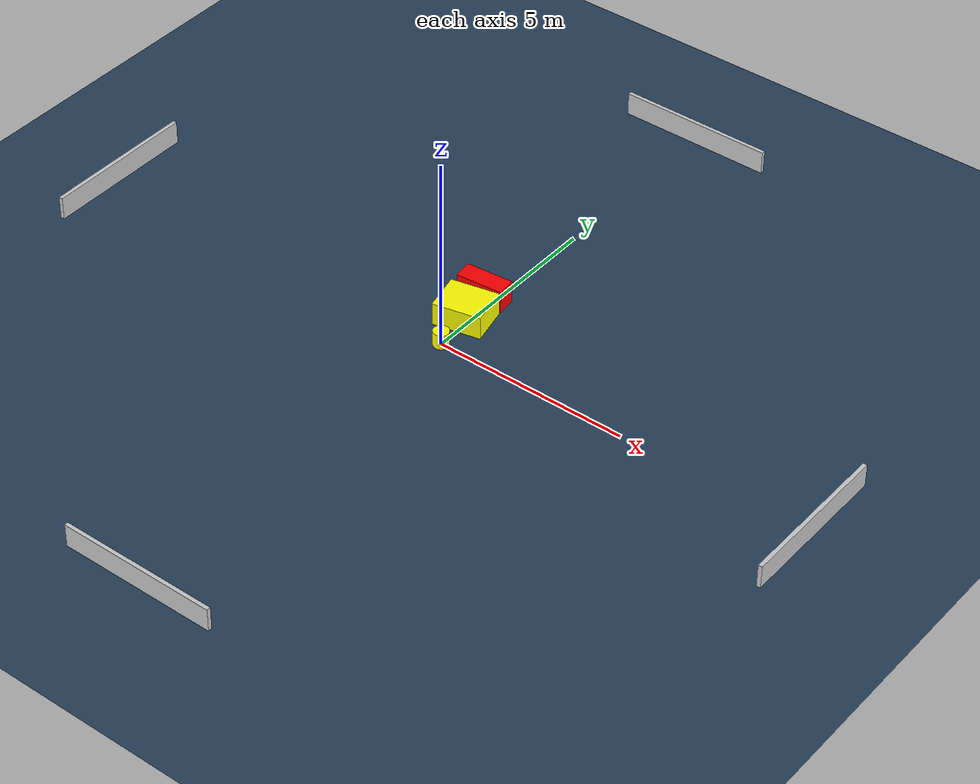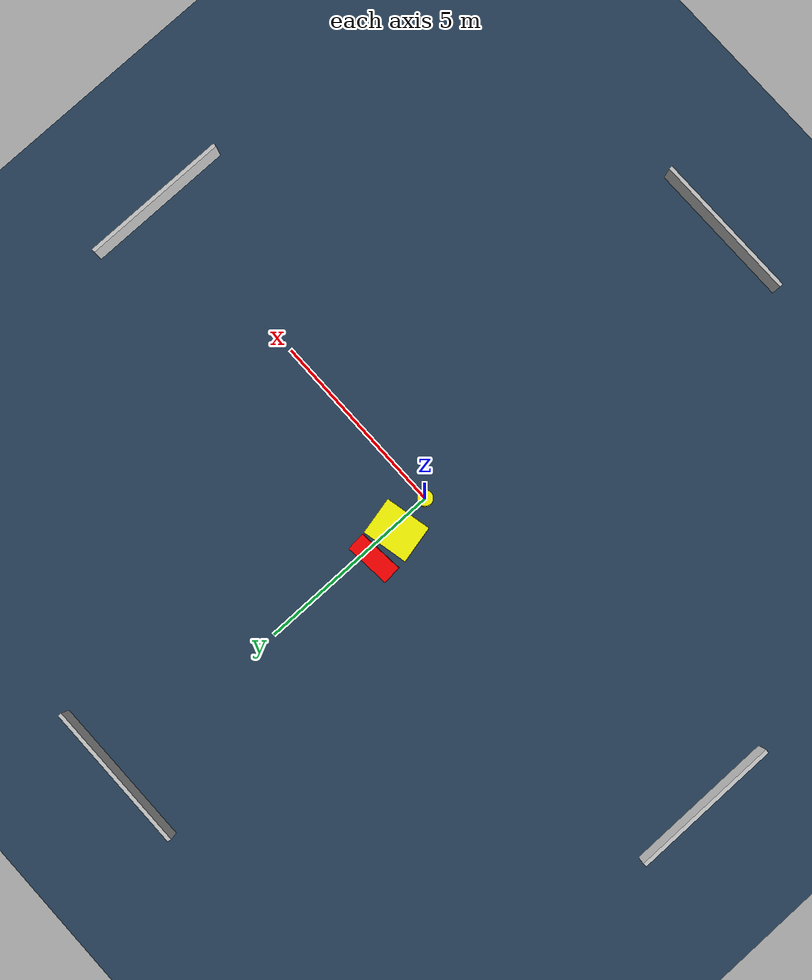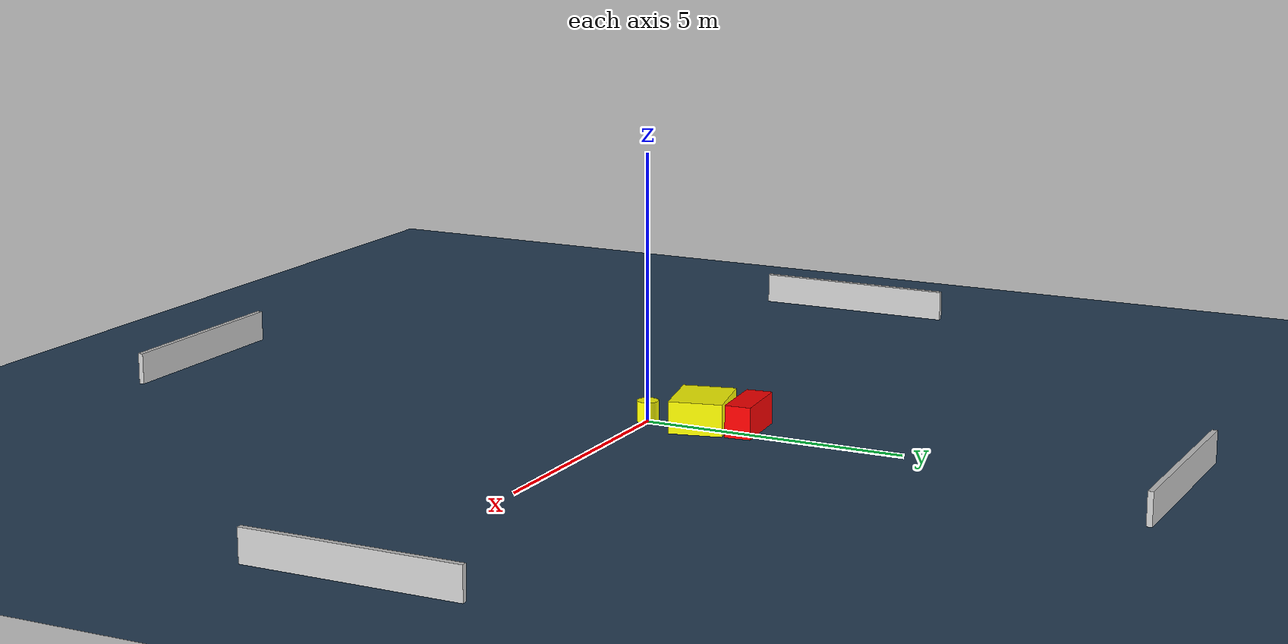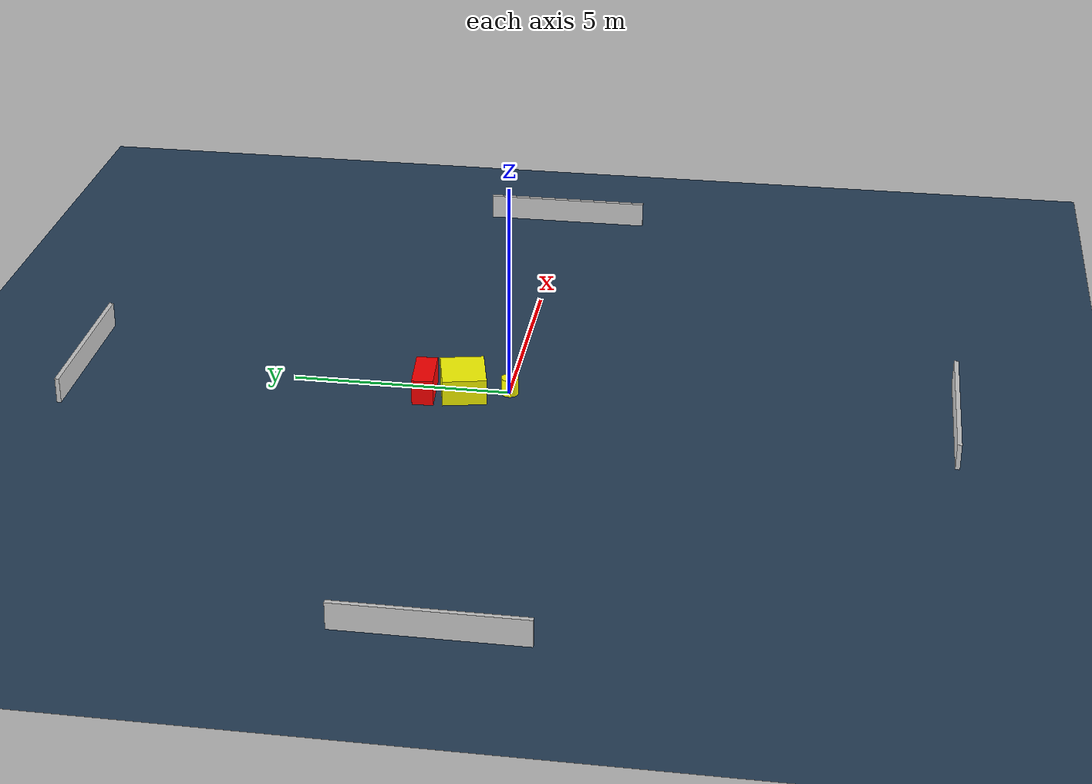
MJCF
<?xml version="1.0" ?>
<mujoco model="generated_environment">
  <option timestep="0.01" integrator="RK4" cone="elliptic"/>
  <default>
    <geom density="1"/>
  </default>
  <asset>
    <texture builtin="gradient" height="3072" name="skybox" rgb1="0.3 0.5 0.7" rgb2="0 0 0" type="skybox" width="512"/>
    <texture builtin="checker" height="300" name="groundplane" rgb1="0.2 0.3 0.4" rgb2="0.1 0.2 0.3" type="2d" width="300"/>
    <material name="groundplane" reflectance="0.2" texrepeat="5 5" texture="groundplane"/>
  </asset>
  <worldbody>
    <light dir="0 0 -1" directional="true" pos="0 0 1.5"/>
    <geom condim="3" friction="0.5 0.005 0.001" material="groundplane" name="floor" pos="0 0 0" size="0 0 0.05" type="plane"/>
    <body name="walls">
      <geom name="wall_1" condim="4" pos="-10.0 0.0 0.3" rgba="0.800000011920929 0.800000011920929 0.800000011920929 1.0" size="0.05 2.0 0.3" type="box"/>
      <geom name="wall_2" condim="4" pos="10.0 0.0 0.3" rgba="0.800000011920929 0.800000011920929 0.800000011920929 1.0" size="0.05 2.0 0.3" type="box"/>
      <geom name="wall_3" condim="4" pos="0.0 -10.0 0.3" rgba="0.800000011920929 0.800000011920929 0.800000011920929 1.0" size="2.0 0.05 0.3" type="box"/>
      <geom name="wall_4" condim="4" pos="0.0 10.0 0.3" rgba="0.800000011920929 0.800000011920929 0.800000011920929 1.0" size="2.0 0.05 0.3" type="box"/>
    </body>
    <body name="robot">
      <joint name="joint_x" type="slide" pos="0 0 0" axis="1 0 0"/>
      <joint name="joint_y" type="slide" pos="0 0 0" axis="0 1 0"/>
      <geom name="robot" type="cylinder" pos="0.0 0.0 0.2" size="0.2 0.2 0.0" mass="5.0" friction="1.0 0.005 0.0001" condim="4" rgba="1.0 1.0 0.0 1.0"/>
    </body>
    <body name="obstacle_1_movable">
      <geom name="obstacle_1_movable" condim="4" pos="-0.1256438205052314 1.0523460347469715 0.3" euler="0 0 102.53094021403814" friction="0.0 0.005 0.001" rgba="1.0 1.0 0.0 1.0" size="0.5013647720520746 0.6101894090266378 0.3" type="box" mass="0.1"/>
      <joint type="free"/>
    </body>
    <body name="obstacle_2_static">
      <geom name="obstacle_2_static" condim="4" pos="-0.262093165976276 1.9141125303980853 0.3" euler="0 0 185.0067356066246" friction="0.0 0.005 0.001" rgba="1.0 0.0 0.0 1.0" size="0.6012917630678901 0.24427307158730457 0.3" type="box"/>
    </body>
  </worldbody>
  <actuator>
    <motor name="actuator_x" joint="joint_x" gear="1" ctrlrange="-1 1"/>
    <motor name="actuator_y" joint="joint_y" gear="1" ctrlrange="-1 1"/>
  </actuator>
</mujoco>
